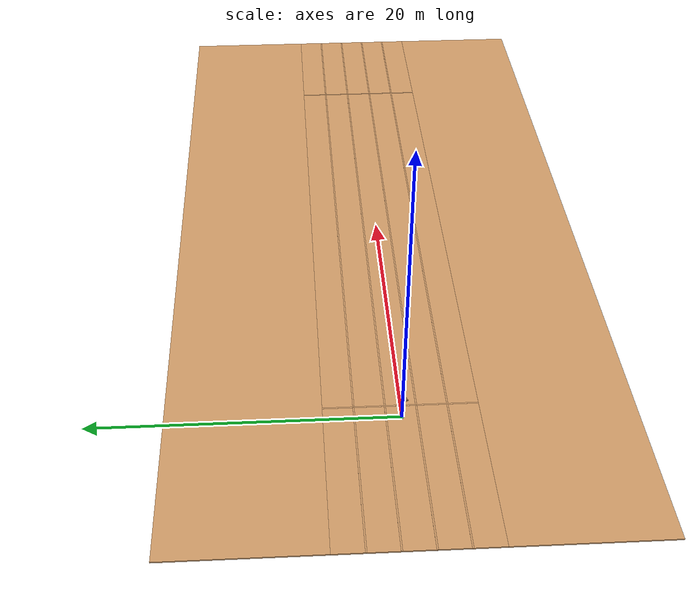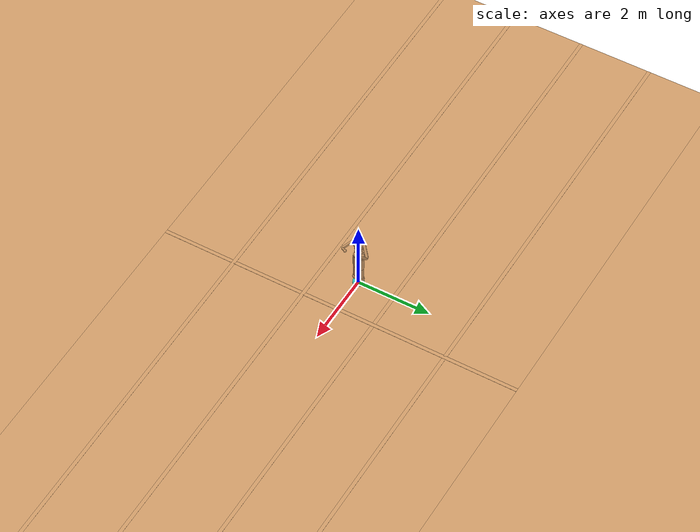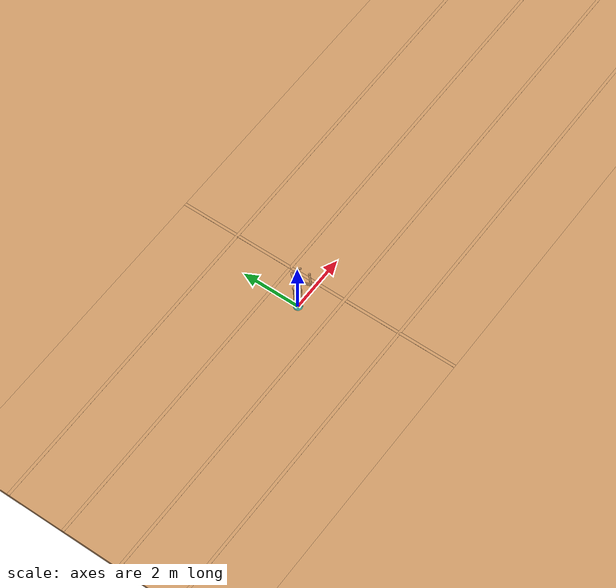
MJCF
<mujoco model="humanoid-walk-track-v3">
    <compiler angle="degree" inertiafromgeom="true"/>
    <default>
        <joint armature="1" damping="1" limited="true"/>
        <geom conaffinity="1" condim="1" contype="1" margin="0.001" material="geom" rgba="0.8 0.6 .4 1"/>
        <motor ctrllimited="true" ctrlrange="-.4 .4"/>
    </default>
    <option integrator="RK4" iterations="50" solver="PGS" timestep="0.003"/>
    <size nkey="5" nuser_geom="1"/>
    <visual>
        <map fogend="5" fogstart="3"/>
    </visual>

    <asset>
        <texture builtin="gradient" height="100" rgb1="0 0 0" rgb2="0 0 0" type="skybox" width="100"/>

        <texture builtin="flat" height="1278" mark="cross" markrgb="1 1 1" name="texgeom" random="0.01" rgb1="0.8 0.6 0.4" rgb2="0.8 0.6 0.4" type="cube" width="127"/>

        <texture type="2d" name="texgrass" builtin="checker" rgb1="0.1 0.4 0.1" rgb2="0.2 0.5 0.2" width="100" height="100"/>
        <texture type="2d" name="textrack_light" builtin="flat" rgb1="0.6 0.3 0.2" width="100" height="100" />
        <texture type="2d" name="textrack_dark" builtin="flat" rgb1="0.45 0.2 0.1" width="100" height="100" />

        <material name="MatGrass" texture="texgrass" texrepeat="2 2" specular="0" shininess="0" reflectance="0"/>
        <material name="MatTrackLight" texture="textrack_light" specular="0.1" shininess="0.1" reflectance="0"/>
        <material name="MatTrackDark" texture="textrack_dark" specular="0.1" shininess="0.1" reflectance="0"/>
        <material name="MatLine" rgba="1 1 1 1" specular="0.5" shininess="0.5" reflectance="0.2"/>
        <material name="geom" texture="texgeom" texuniform="true"/>

        <material name="MatUpperBody" rgba="0.95 0.85 0.1 1" specular="0.5" shininess="0.5" reflectance="0.1"/>
        <material name="MatPelvis" rgba="0.05 0.5 0.2 1" specular="0.5" shininess="0.5" reflectance="0.1"/>
        <material name="MatSkin" rgba="0.56 0.40 0.28 1" specular="0.2" shininess="0.1" reflectance="0"/>

        <texture name="shirt_texture" type="2d" file="./assets/shirtPattern.png"/>
        <material name="material_shirt" texture="shirt_texture" specular="0.3" shininess="0.5" texrepeat="0.5 0.5"/>

        <texture name="trunks_texture" type="2d" file="./assets/shorts.png"/>
        <material name="material_trunks" texture="trunks_texture" specular="0.3" shininess="0.5" texrepeat="2 2"/>

        <texture name="jacob_head_texture" type="2d" file="./assets/jacob1.png"/>
        <material name="jacob_material" texture="jacob_head_texture" specular="0.3" shininess="0.5" texrepeat="0.99 0.99"/>

        <texture name="skin_texture" type="2d" file="./assets/skintone.png"/>
        <material name="material_skin" texture="skin_texture" specular="0.3" shininess="0.5" texrepeat="1 1"/>
    </asset>

    <worldbody>
        <light cutoff="100" diffuse="1 1 1" dir="-0 0 -1.3" directional="true" exponent="1" pos="0 0 1.3" specular=".1 .1 .1"/>

        <geom name="grass_left" condim="3" friction="1 .1 .1" type="box" size="30 5 0.05" pos="20 -10 -0.05" material="MatGrass" />
        <geom name="grass_right" condim="3" friction="1 .1 .1" type="box" size="30 5 0.05" pos="20 10 -0.05" material="MatGrass" />
        <geom name="lane_1" condim="3" friction="1 .1 .1" type="box" size="30 1 0.05" pos="20 -4 -0.05" material="MatTrackLight" />
        <geom name="lane_2" condim="3" friction="1 .1 .1" type="box" size="30 1 0.05" pos="20 -2 -0.05" material="MatTrackDark" />
        <geom name="lane_3" condim="3" friction="1 .1 .1" type="box" size="30 1 0.05" pos="20 0 -0.05"  material="MatTrackLight" />
        <geom name="lane_4" condim="3" friction="1 .1 .1" type="box" size="30 1 0.05" pos="20 2 -0.05"  material="MatTrackDark" />
        <geom name="lane_5" condim="3" friction="1 .1 .1" type="box" size="30 1 0.05" pos="20 4 -0.05"  material="MatTrackLight" />
        <geom name="start_line" condim="3" friction="1 .1 .1" type="box" size="0.05 5 0.001" pos="1 0 0.001"  material="MatLine" />
        <geom name="line_1" condim="3" friction="1 .1 .1" type="box" size="30 0.05 0.001" pos="20 -3 0.001" material="MatLine" />
        <geom name="line_2" condim="3" friction="1 .1 .1" type="box" size="30 0.05 0.001" pos="20 -1 0.001" material="MatLine" />
        <geom name="line_3" condim="3" friction="1 .1 .1" type="box" size="30 0.05 0.001" pos="20 1 0.001"  material="MatLine" />
        <geom name="line_4" condim="3" friction="1 .1 .1" type="box" size="30 0.05 0.001" pos="20 3 0.001"  material="MatLine" />
        <geom name="finish_line" condim="3" friction="1 .1 .1" type="box" size="0.05 5 0.001" pos="40 0 0.001"  material="MatLine" />

        <site name="target_marker" type="sphere" size="0.15" rgba="0 1 1 0.7" />

        <body name="torso" pos="0 0 1.4">
            <camera name="side_view2" mode="trackcom" pos="1 -3 0.5" xyaxes="1 0 0 0 0.4 0.9"/>
            <camera name="chase_view_backward" mode="trackcom" pos="2.5 0 0.25" xyaxes="0 1 0 -0.342 0 0.940"/>
            <camera name="side_view1" mode="trackcom" pos="1 3 0.5" xyaxes="-1 0 0 0 -0.4 0.9"/>
            <camera name="third_person_follower" mode="trackcom" pos="-3 0 0.5" xyaxes="0 -1 0 0.342 0 0.940"/>
            <joint armature="0" damping="0" limited="false" name="root" pos="0 0 0" stiffness="0" type="free"/>
            <geom fromto="0 -.07 0 0 .07 0" name="torso1" size="0.07" type="capsule" material="material_shirt"/>
            <geom name="head" pos="0 0 .19" size=".1" type="sphere" user="258" material="jacob_material" quat="0.707 0 0.507 0"/>
            <geom fromto="-.01 -.06 -.12 -.01 .06 -.12" name="uwaist" size="0.06" type="capsule" material="material_shirt"/>
            <body name="lwaist" pos="-.01 0 -0.260" quat="1.000 0 -0.002 0">
                <geom fromto="0 -.06 0 0 .06 0" name="lwaist" size="0.06" type="capsule" material="material_shirt"/>
                <joint armature="0.02" axis="0 0 1" damping="5" name="abdomen_z" pos="0 0 0.065" range="-45 45" stiffness="20" type="hinge"/>
                <joint armature="0.02" axis="0 1 0" damping="5" name="abdomen_y" pos="0 0 0.065" range="-75 30" stiffness="10" type="hinge"/>
                <body name="pelvis" pos="0 0 -0.165" quat="1.000 0 -0.002 0">
                    <joint armature="0.02" axis="1 0 0" damping="5" name="abdomen_x" pos="0 0 0.1" range="-35 35" stiffness="10" type="hinge"/>
                    <geom fromto="-.02 -.07 0 -.02 .07 0" name="butt" size="0.09" type="capsule" material="material_trunks"/>
                    <body name="right_thigh" pos="0 -0.1 -0.04">
                        <joint armature="0.01" axis="1 0 0" damping="5" name="right_hip_x" pos="0 0 0" range="-25 5" stiffness="10" type="hinge"/>
                        <joint armature="0.01" axis="0 0 1" damping="5" name="right_hip_z" pos="0 0 0" range="-60 35" stiffness="10" type="hinge"/>
                        <joint armature="0.0080" axis="0 1 0" damping="5" name="right_hip_y" pos="0 0 0" range="-110 20" stiffness="20" type="hinge"/>
                        <geom fromto="0 0 0 0 0.01 -.34" name="right_thigh1" size="0.06" type="capsule" material="material_skin"/>
                        <body name="right_shin" pos="0 0.01 -0.403">
                            <joint armature="0.0060" axis="0 -1 0" name="right_knee" pos="0 0 .02" range="-160 -2" type="hinge"/>
                            <geom fromto="0 0 0 0 0 -.3" name="right_shin1" size="0.049" type="capsule" material="material_skin"/>
                            <body name="right_foot" pos="0 0 -0.45">
                                <geom name="right_foot" pos="0 0 0.1" size="0.075" type="sphere" user="0" material="material_skin"/>
                            </body>
                        </body>
                    </body>
                    <body name="left_thigh" pos="0 0.1 -0.04">
                        <joint armature="0.01" axis="-1 0 0" damping="5" name="left_hip_x" pos="0 0 0" range="-25 5" stiffness="10" type="hinge"/>
                        <joint armature="0.01" axis="0 0 -1" damping="5" name="left_hip_z" pos="0 0 0" range="-60 35" stiffness="10" type="hinge"/>
                        <joint armature="0.01" axis="0 1 0" damping="5" name="left_hip_y" pos="0 0 0" range="-110 20" stiffness="20" type="hinge"/>
                        <geom fromto="0 0 0 0 -0.01 -.34" name="left_thigh1" size="0.06" type="capsule" material="material_skin"/>
                        <body name="left_shin" pos="0 -0.01 -0.403">
                            <joint armature="0.0060" axis="0 -1 0" name="left_knee" pos="0 0 .02" range="-160 -2" stiffness="1" type="hinge"/>
                            <geom fromto="0 0 0 0 0 -.3" name="left_shin1" size="0.049" type="capsule" material="material_skin"/>
                            <body name="left_foot" pos="0 0 -0.45">
                                <geom name="left_foot" type="sphere" size="0.075" pos="0 0 0.1" user="0" material="material_skin"/>
                            </body>
                        </body>
                    </body>
                </body>
            </body>
            <body name="right_upper_arm" pos="0 -0.17 0.06">
                <joint armature="0.0068" axis="2 1 1" name="right_shoulder1" pos="0 0 0" range="-85 60" stiffness="1" type="hinge"/>
                <joint armature="0.0051" axis="0 -1 1" name="right_shoulder2" pos="0 0 0" range="-85 60" stiffness="1" type="hinge"/>
                <geom fromto="0 0 0 .16 -.16 -.16" name="right_uarm1" size="0.04 0.16" type="capsule" material="material_skin"/>
                <body name="right_lower_arm" pos=".18 -.18 -.18">
                    <joint armature="0.0028" axis="0 -1 1" name="right_elbow" pos="0 0 0" range="-90 50" stiffness="0" type="hinge"/>
                    <geom fromto="0.01 0.01 0.01 .17 .17 .17" name="right_larm" size="0.031" type="capsule" material="material_skin"/>
                    <geom name="right_hand" pos=".18 .18 .18" size="0.04" type="sphere" material="material_skin"/>
                </body>
            </body>
            <body name="left_upper_arm" pos="0 0.17 0.06">
                <joint armature="0.0068" axis="2 -1 1" name="left_shoulder1" pos="0 0 0" range="-60 85" stiffness="1" type="hinge"/>
                <joint armature="0.0051" axis="0 1 1" name="left_shoulder2" pos="0 0 0" range="-60 85" stiffness="1" type="hinge"/>
                <geom fromto="0 0 0 .16 .16 -.16" name="left_uarm1" size="0.04 0.16" type="capsule" material="material_skin"/>
                <body name="left_lower_arm" pos=".18 .18 -.18">
                    <joint armature="0.0028" axis="0 -1 -1" name="left_elbow" pos="0 0 0" range="-90 50" stiffness="0" type="hinge"/>
                    <geom fromto="0.01 -0.01 0.01 .17 -.17 .17" name="left_larm" size="0.031" type="capsule" material="material_skin"/>
                    <geom name="left_hand" pos=".18 -.18 .18" size="0.04" type="sphere" material="material_skin"/>
                </body>
            </body>
        </body>
    </worldbody>
    <tendon>
        <fixed name="left_hipknee">
            <joint coef="-1" joint="left_hip_y"/>
            <joint coef="1" joint="left_knee"/>
        </fixed>
        <fixed name="right_hipknee">
            <joint coef="-1" joint="right_hip_y"/>
            <joint coef="1" joint="right_knee"/>
        </fixed>
    </tendon>

    <actuator>
        <motor gear="100" joint="abdomen_y" name="abdomen_y"/>
        <motor gear="100" joint="abdomen_z" name="abdomen_z"/>
        <motor gear="100" joint="abdomen_x" name="abdomen_x"/>
        <motor gear="100" joint="right_hip_x" name="right_hip_x"/>
        <motor gear="100" joint="right_hip_z" name="right_hip_z"/>
        <motor gear="300" joint="right_hip_y" name="right_hip_y"/>
        <motor gear="200" joint="right_knee" name="right_knee"/>
        <motor gear="100" joint="left_hip_x" name="left_hip_x"/>
        <motor gear="100" joint="left_hip_z" name="left_hip_z"/>
        <motor gear="300" joint="left_hip_y" name="left_hip_y"/>
        <motor gear="200" joint="left_knee" name="left_knee"/>
        <motor gear="25" joint="right_shoulder1" name="right_shoulder1"/>
        <motor gear="25" joint="right_shoulder2" name="right_shoulder2"/>
        <motor gear="25" joint="right_elbow" name="right_elbow"/>
        <motor gear="25" joint="left_shoulder1" name="left_shoulder1"/>
        <motor gear="25" joint="left_shoulder2" name="left_shoulder2"/>
        <motor gear="25" joint="left_elbow" name="left_elbow"/>
    </actuator>
</mujoco>
